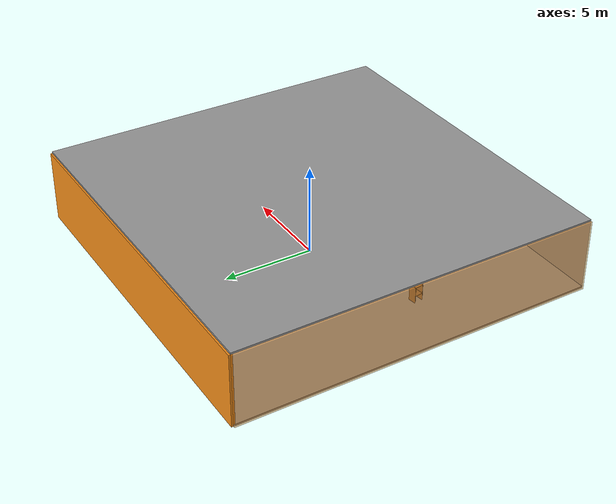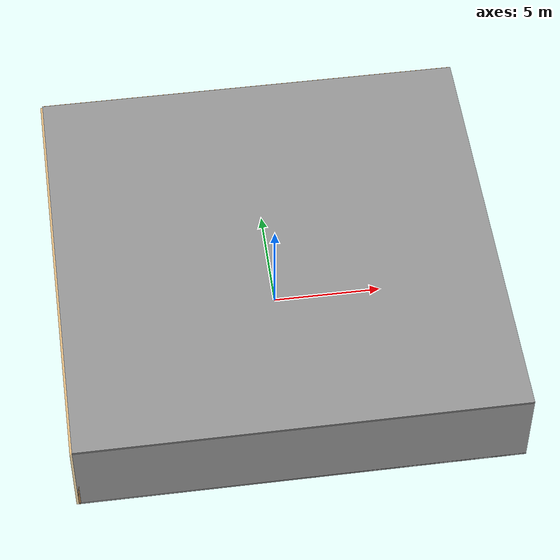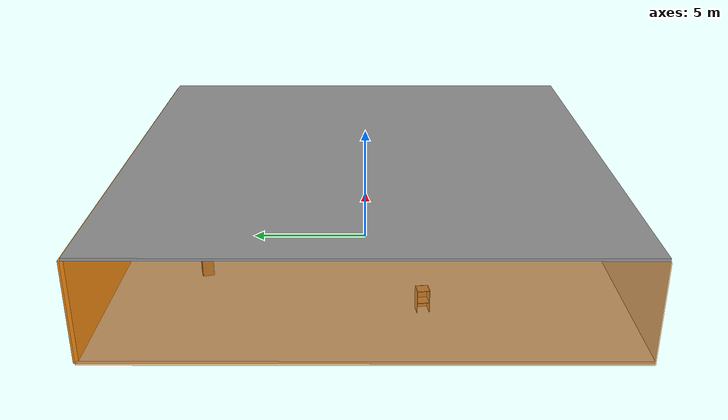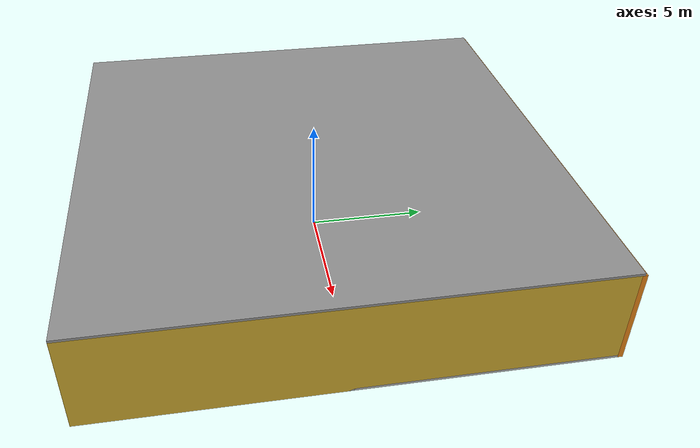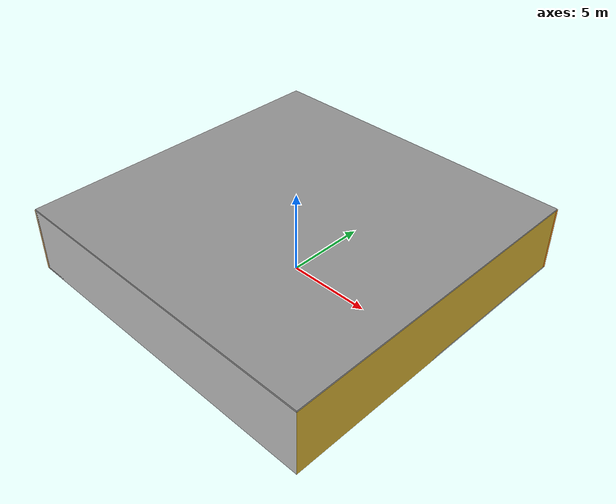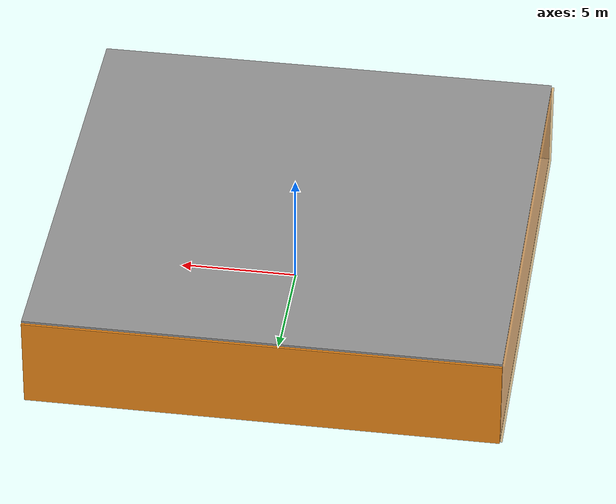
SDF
<sdf version="1.4">
 <world name="default">
  <physics type="ode">
   <max_step_size>0.001</max_step_size>
   <real_time_factor>1</real_time_factor>
   <real_time_update_rate>1000</real_time_update_rate>
   <gravity>0 0 -9.8</gravity>
  </physics>
  <scene><ambient>0.4 0.4 0.4 1</ambient><background>0.7 0.7 0.7 1</background><shadows>1</shadows></scene>
  <model name="Surrounding">
   <static>1</static>
   <link name="Ceiling">
    <collision name="Ceiling_Collision"><geometry><box><size>20 20 0.1</size></box></geometry></collision>
    <visual name="Ceiling_Visual">
     <geometry><box><size>20 20 0.1</size></box></geometry>
     <material>
      <script><uri>file://media/materials/scripts/gazebo.material</uri><name>Gazebo/Grey</name></script>
     </material>
    </visual>
    <pose>0 0 4.05 0 0 0</pose>
   </link>
   <link name="Wall_South">
    <collision name="Wall_South_Collision">
     <geometry><box><size>20 0 4</size></box></geometry>
     <pose>0 0 2 0 -0 0</pose>
    </collision>
    <visual name="Wall_South_Visual">
     <pose>0 0 2 0 -0 0</pose>
     <geometry><box><size>20 0 4</size></box></geometry>
     <material>
      <script><uri>file://media/materials/scripts/gazebo.material</uri><name>Gazebo/LightOn</name></script>
     </material>
    </visual>
    <velocity_decay><linear>0</linear><angular>0</angular></velocity_decay>
    <pose>0 -10 0 0 -0 0</pose>
   </link>
   <link name="Wall_East">
    <collision name="Wall_21_Collision">
     <geometry><box><size>20 0 4</size></box></geometry>
     <pose>0 0 2 0 -0 0</pose>
    </collision>
    <visual name="Wall_21_Visual">
     <pose>0 0 2 0 -0 0</pose>
     <geometry><box><size>20 0 4</size></box></geometry>
     <material>
      <script><uri>file://media/materials/scripts/gazebo.material</uri><name>Gazebo/Gold</name></script>
     </material>
    </visual>
    <velocity_decay><linear>0</linear><angular>0</angular></velocity_decay>
    <pose>10 0 0 0 -0 1.5708</pose>
   </link>
   <link name="Wall_North">
    <collision name="Wall_22_Collision">
     <geometry><box><size>20 0.2 4</size></box></geometry>
     <pose>0 0 2 0 -0 0</pose>
    </collision>
    <visual name="Wall_22_Visual">
     <pose>0 0 2 0 -0 0</pose>
     <geometry><box><size>20 0.2 4</size></box></geometry>
     <material>
      <script><uri>file://media/materials/scripts/gazebo.material</uri><name>Gazebo/Orange</name></script>
     </material>
    </visual>
    <velocity_decay><linear>0</linear><angular>0</angular></velocity_decay>
    <pose>0 10 0 0 -0 0</pose>
   </link>
   <link name="Wall_West">
    <collision name="Wall_23_Collision">
     <geometry><box><size>20 0.2 4</size></box></geometry>
     <pose>0 0 2 0 -0 0</pose>
    </collision>
    <visual name="Wall_23_Visual">
     <pose>0 0 2 0 -0 0</pose>
     <geometry><box><size>20 0.2 4</size></box></geometry>
     <material>
      <script>
       <uri>file://media/materials/scripts/gazebo.material</uri>
       <name>Gazebo/OrangeTransparent</name>
      </script>
     </material>
    </visual>
    <velocity_decay><linear>0</linear><angular>0</angular></velocity_decay>
    <pose>-10 0 0 0 0 -1.5708</pose>
   </link>
   <link name="Ground_link">
    <collision name="collision">
     <pose>0 0 .05 0 -0 0</pose>
     <geometry><box><size>20 20 0.1</size></box></geometry>
    </collision>
    <visual name="visual">
     <pose>0 0 .05 0 -0 0</pose>
     <geometry><box><size>20 20 0.1</size></box></geometry>
     <material>
      <script><uri>file://media/materials/scripts/gazebo.material</uri><name>Gazebo/JointAnchor</name></script>
     </material>
    </visual>
   </link>
   <static>1</static>
  </model>
  <spherical_coordinates>
   <surface_model>EARTH_WGS84</surface_model>
   <latitude_deg>0</latitude_deg>
   <longitude_deg>0</longitude_deg>
   <elevation>0</elevation>
   <heading_deg>0</heading_deg>
  </spherical_coordinates>
  <light name="lightball_0" type="diffuse">
   <diffuse>0.8 0.8 0.8 1</diffuse>
   <specular>0.2 0.2 0.2 1</specular>
   <attenuation>
    <range>100</range>
    <constant>0.7</constant>
    <linear>0.01</linear>
    <quadratic>0.001</quadratic>
   </attenuation>
   <direction>-0.5 0.1 -0.9</direction>
   <pose>-1.98284704831 -4.04191727016 1.84114158887 0 0 0</pose>
  </light>
  <light name="lightball_1" type="diffuse">
   <diffuse>0.8 0.8 0.8 1</diffuse>
   <specular>0.2 0.2 0.2 1</specular>
   <attenuation>
    <range>100</range>
    <constant>0.7</constant>
    <linear>0.01</linear>
    <quadratic>0.001</quadratic>
   </attenuation>
   <direction>-0.5 0.1 -0.9</direction>
   <pose>9.79250395435 7.86484292257 3.55461371257 0 0 0</pose>
  </light>
  <light name="lightball_2" type="diffuse">
   <diffuse>0.8 0.8 0.8 1</diffuse>
   <specular>0.2 0.2 0.2 1</specular>
   <attenuation>
    <range>100</range>
    <constant>0.7</constant>
    <linear>0.01</linear>
    <quadratic>0.001</quadratic>
   </attenuation>
   <direction>-0.5 0.1 -0.9</direction>
   <pose>5.32424938726 -0.368213467007 1.43485212472 0 0 0</pose>
  </light>
  <light name="lightball_3" type="diffuse">
   <diffuse>0.8 0.8 0.8 1</diffuse>
   <specular>0.2 0.2 0.2 1</specular>
   <attenuation>
    <range>100</range>
    <constant>0.7</constant>
    <linear>0.01</linear>
    <quadratic>0.001</quadratic>
   </attenuation>
   <direction>-0.5 0.1 -0.9</direction>
   <pose>0.803254164161 -7.47509873117 0.975967519623 0 0 0</pose>
  </light>
  <include><uri>model://cabinet</uri><pose>-6.5564336625 -2.15751080366 0 0 0 0.14377211408</pose></include>
  <include><uri>model://cabinet</uri><pose>-3.66117170835 6.46958280551 0 0 0 1.82920846033</pose></include>
  <include><uri>model://table</uri><pose>2.0075691586 2.65995450912 0 0 0 0.953653128053</pose></include>
  <include>
   <uri>model://robocup_3Dsim_goal</uri>
   <pose>4.28795644696 -5.30229044966 0 0 0 0.564708497128</pose>
  </include>
  <include>
   <uri>model://robocup_3Dsim_goal</uri>
   <pose>5.33492452693 4.58140360673 0 0 0 1.13485325562</pose>
  </include>
 </world>
</sdf>

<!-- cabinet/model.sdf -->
<sdf version="1.5">
  <model name="cabinet">
    <static>true</static>
    <link name="cabinet_bottom_plate">
      <inertial>
        <pose>0 0 -1 0 0 0</pose>
        <inertia>
          <ixx>2.050000</ixx>
          <ixy>0</ixy>
          <ixz>0</ixz>
          <iyy>2.050000</iyy>
          <iyz>0</iyz>
          <izz>2.050000</izz>
        </inertia>
        <mass>25.000000</mass>
      </inertial>
      <collision name="cabinet_bottom_plate_geom">
        <pose>0 0 0.010000 0 0 0</pose>
        <geometry>
          <box>
            <size>0.450000 0.450000 0.020000</size>
          </box>
        </geometry>
      </collision>
      <visual name="cabinet_bottom_plate_geom_visual">
        <pose>0 0 0.010000 0 0 0</pose>
        <geometry>
          <box>
            <size>0.450000 0.450000 0.020000</size>
          </box>
        </geometry>
        <material>
          <script>
            <uri>model://media/materials/scripts/gazebo.material</uri>
            <name>Gazebo/Wood</name>
          </script>
        </material>
      </visual>
      <collision name="cabinet_bottom_plate_geom_cabinet_back_plate">
        <pose>0.235000 0 0.510000 0 0 0</pose>
        <geometry>
          <box>
            <size>0.020000 0.450000 1.020000</size>
          </box>
        </geometry>
      </collision>
      <visual name="cabinet_bottom_plate_geom_cabinet_back_plate_visual">
        <pose>0.235000 0 0.510000 0 0 0</pose>
        <geometry>
          <box>
            <size>0.020000 0.450000 1.020000</size>
          </box>
        </geometry>
        <material>
          <script>
            <uri>model://media/materials/scripts/gazebo.material</uri>
            <name>Gazebo/Wood</name>
          </script>
        </material>
      </visual>
      <collision name="cabinet_bottom_plate_geom_cabinet_left_plate">
        <pose>0 0.235000 0.510000 0 0 0</pose>
        <geometry>
          <box>
            <size>0.450000 0.020000 1.020000</size>
          </box>
        </geometry>
      </collision>
      <visual name="cabinet_bottom_plate_geom_cabinet_left_plate_visual">
        <pose>0 0.235000 0.510000 0 0 0</pose>
        <geometry>
          <box>
            <size>0.450000 0.020000 1.020000</size>
          </box>
        </geometry>
        <material>
          <script>
            <uri>model://media/materials/scripts/gazebo.material</uri>
            <name>Gazebo/Wood</name>
          </script>
        </material>
      </visual>
      <collision name="cabinet_bottom_plate_geom_cabinet_middle_plate">
        <pose>0 0 0.510000 0 0 0</pose>
        <geometry>
          <box>
            <size>0.450000 0.450000 0.020000</size>
          </box>
        </geometry>
      </collision>
      <visual name="cabinet_bottom_plate_geom_cabinet_middle_plate_visual">
        <pose>0 0 0.510000 0 0 0</pose>
        <geometry>
          <box>
            <size>0.450000 0.450000 0.020000</size>
          </box>
        </geometry>
        <material>
          <script>
            <uri>model://media/materials/scripts/gazebo.material</uri>
            <name>Gazebo/Wood</name>
          </script>
        </material>
      </visual>
      <collision name="cabinet_bottom_plate_geom_cabinet_right_plate">
        <pose>0 -0.235000 0.510000 0 0 0</pose>
        <geometry>
          <box>
            <size>0.450000 0.020000 1.020000</size>
          </box>
        </geometry>
      </collision>
      <visual name="cabinet_bottom_plate_geom_cabinet_right_plate_visual">
        <pose>0 -0.235000 0.510000 0 0 0</pose>
        <geometry>
          <box>
            <size>0.450000 0.020000 1.020000</size>
          </box>
        </geometry>
        <material>
          <script>
            <uri>model://media/materials/scripts/gazebo.material</uri>
            <name>Gazebo/Wood</name>
          </script>
        </material>
      </visual>
      <collision name="cabinet_bottom_plate_geom_cabinet_top_plate">
        <pose>0 0 1.010000 0 0 0</pose>
        <geometry>
          <box>
            <size>0.450000 0.450000 0.020000</size>
          </box>
        </geometry>
      </collision>
      <visual name="cabinet_bottom_plate_geom_cabinet_top_plate_visual">
        <pose>0 0 1.010000 0 0 0</pose>
        <geometry>
          <box>
            <size>0.450000 0.450000 0.020000</size>
          </box>
        </geometry>
        <material>
          <script>
            <uri>model://media/materials/scripts/gazebo.material</uri>
            <name>Gazebo/Wood</name>
          </script>
        </material>
      </visual>
    </link>
  </model>
</sdf>

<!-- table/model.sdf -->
<sdf version="1.5">
  <model name="table">
    <static>true</static>
    <link name="link">
      <collision name="surface">
        <pose>0 0 1.0 0 0 0</pose>
        <geometry>
          <box>
            <size>1.5 0.8 0.03</size>
          </box>
        </geometry>
        <surface>
          <friction>
            <ode>
              <mu>0.6</mu>
              <mu2>0.6</mu2>
            </ode>
          </friction>
        </surface>
      </collision>
      <visual name="visual1">
        <pose>0 0 1.0 0 0 0</pose>
        <geometry>
          <box>
            <size>1.5 0.8 0.03</size>
          </box>
        </geometry>
        <material>
          <script>
            <uri>model://media/materials/scripts/gazebo.material</uri>
            <name>Gazebo/Wood</name>
          </script>
        </material>
      </visual>
      <collision name="front_left_leg">
        <pose>0.68 0.38 0.5 0 0 0</pose>
        <geometry>
          <cylinder>
            <radius>0.02</radius>
            <length>1.0</length>
          </cylinder>
        </geometry>
      </collision>
      <visual name="front_left_leg">
        <pose>0.68 0.38 0.5 0 0 0</pose>
        <geometry>
          <cylinder>
            <radius>0.02</radius>
            <length>1.0</length>
          </cylinder>
        </geometry>
        <material>
          <script>
            <uri>model://media/materials/scripts/gazebo.material</uri>
            <name>Gazebo/Grey</name>
          </script>
        </material>
      </visual>
      <collision name="front_right_leg">
        <pose>0.68 -0.38 0.5 0 0 0</pose>
        <geometry>
          <cylinder>
            <radius>0.02</radius>
            <length>1.0</length>
          </cylinder>
        </geometry>
      </collision>
      <visual name="front_right_leg">
        <pose>0.68 -0.38 0.5 0 0 0</pose>
        <geometry>
          <cylinder>
            <radius>0.02</radius>
            <length>1.0</length>
          </cylinder>
        </geometry>
        <material>
          <script>
            <uri>model://media/materials/scripts/gazebo.material</uri>
            <name>Gazebo/Grey</name>
          </script>
        </material>
      </visual>
      <collision name="back_right_leg">
        <pose>-0.68 -0.38 0.5 0 0 0</pose>
        <geometry>
          <cylinder>
            <radius>0.02</radius>
            <length>1.0</length>
          </cylinder>
        </geometry>
      </collision>
      <visual name="back_right_leg">
        <pose>-0.68 -0.38 0.5 0 0 0</pose>
        <geometry>
          <cylinder>
            <radius>0.02</radius>
            <length>1.0</length>
          </cylinder>
        </geometry>
        <material>
          <script>
            <uri>model://media/materials/scripts/gazebo.material</uri>
            <name>Gazebo/Grey</name>
          </script>
        </material>
      </visual>
      <collision name="back_left_leg">
        <pose>-0.68 0.38 0.5 0 0 0</pose>
        <geometry>
          <cylinder>
            <radius>0.02</radius>
            <length>1.0</length>
          </cylinder>
        </geometry>
      </collision>
      <visual name="back_left_leg">
        <pose>-0.68 0.38 0.5 0 0 0</pose>
        <geometry>
          <cylinder>
            <radius>0.02</radius>
            <length>1.0</length>
          </cylinder>
        </geometry>
        <material>
          <script>
            <uri>model://media/materials/scripts/gazebo.material</uri>
            <name>Gazebo/Grey</name>
          </script>
        </material>
      </visual>
    </link>
  </model>
</sdf>

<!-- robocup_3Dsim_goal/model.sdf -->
<sdf version="1.5">
  <model name="robocup_3d_goal">
    <static>true</static>
    <link name="left_post">
      <pose>0 1.05 0.45 0 0 0</pose>
      <collision name="collision">
        <geometry>
          <cylinder>
            <radius>0.05</radius>
            <length>0.9</length>
          </cylinder>
        </geometry>
      </collision>
      <visual name="visual">
        <geometry>
          <cylinder>
            <radius>0.05</radius>
            <length>0.9</length>
          </cylinder>
        </geometry>
        <material>
          <script>
            <uri>file://media/materials/scripts/gazebo.material</uri>
            <name>Gazebo/ZincYellow</name>
          </script>
        </material>
      </visual>
    </link>
    <link name="left_support_horiz_lower">
      <pose>0.30 1.05 0.01 0 0 0</pose>
      <collision name="collision">
        <geometry>
          <box>
            <size>0.50 0.02 0.02</size>
          </box>
        </geometry>
      </collision>
      <visual name="visual">
        <geometry>
          <box>
            <size>0.50 0.02 0.02</size>
          </box>
        </geometry>
        <material>
          <script>
            <uri>file://media/materials/scripts/gazebo.material</uri>
            <name>Gazebo/White</name>
          </script>
        </material>
      </visual>
    </link>
    <link name="left_support_horiz_upper">
      <pose>0.30 1.05 0.79 0 0 0</pose>
      <collision name="collision">
        <geometry>
          <box>
            <size>0.50 0.02 0.02</size>
          </box>
        </geometry>
      </collision>
      <visual name="visual">
        <geometry>
          <box>
            <size>0.50 0.02 0.02</size>
          </box>
        </geometry>
        <material>
          <script>
            <uri>file://media/materials/scripts/gazebo.material</uri>
            <name>Gazebo/White</name>
          </script>
        </material>
      </visual>
    </link>
    <link name="left_support_vertical">
      <pose>0.56 1.05 0.4 0 1.5708 0</pose>
      <collision name="collision">
        <geometry>
          <box>
            <size>0.80 0.02 0.02</size>
          </box>
        </geometry>
      </collision>
      <visual name="visual">
        <geometry>
          <box>
            <size>0.80 0.02 0.02</size>
          </box>
        </geometry>
        <material>
          <script>
            <uri>file://media/materials/scripts/gazebo.material</uri>
            <name>Gazebo/White</name>
          </script>
        </material>
      </visual>
    </link>
    <link name="right_support_horiz_lower">
      <pose>0.30 -1.05 0.01 0 0 0</pose>
      <collision name="collision">
        <geometry>
          <box>
            <size>0.50 0.02 0.02</size>
          </box>
        </geometry>
      </collision>
      <visual name="visual">
        <geometry>
          <box>
            <size>0.50 0.02 0.02</size>
          </box>
        </geometry>
        <material>
          <script>
            <uri>file://media/materials/scripts/gazebo.material</uri>
            <name>Gazebo/White</name>
          </script>
        </material>
      </visual>
    </link>
    <link name="right_support_horiz_upper">
      <pose>0.30 -1.05 0.79 0 0 0</pose>
      <collision name="collision">
        <geometry>
          <box>
            <size>0.50 0.02 0.02</size>
          </box>
        </geometry>
      </collision>
      <visual name="visual">
        <geometry>
          <box>
            <size>0.50 0.02 0.02</size>
          </box>
        </geometry>
        <material>
          <script>
            <uri>file://media/materials/scripts/gazebo.material</uri>
            <name>Gazebo/White</name>
          </script>
        </material>
      </visual>
    </link>
    <link name="right_support_vertical">
      <pose>0.56 -1.05 0.4 0 1.5708 0</pose>
      <collision name="collision">
        <geometry>
          <box>
            <size>0.80 0.02 0.02</size>
          </box>
        </geometry>
      </collision>
      <visual name="visual">
        <geometry>
          <box>
            <size>0.80 0.02 0.02</size>
          </box>
        </geometry>
        <material>
          <script>
            <uri>file://media/materials/scripts/gazebo.material</uri>
            <name>Gazebo/White</name>
          </script>
        </material>
      </visual>
    </link>
    <link name="center_support_horiz_lower">
      <pose>0.56 0 0.01 0 1.5708 0</pose>
      <collision name="collision">
        <geometry>
          <box>
            <size>0.02 2.08 0.02</size>
          </box>
        </geometry>
      </collision>
      <visual name="visual">
        <geometry>
          <box>
            <size>0.02 2.08 0.02</size>
          </box>
        </geometry>
        <material>
          <script>
            <uri>file://media/materials/scripts/gazebo.material</uri>
            <name>Gazebo/White</name>
          </script>
        </material>
      </visual>
    </link>
    <link name="center_support_horiz_upper">
      <pose>0.56 0 0.79 0 1.5708 0</pose>
      <collision name="collision">
        <geometry>
          <box>
            <size>0.02 2.08 0.02</size>
          </box>
        </geometry>
      </collision>
      <visual name="visual">
        <geometry>
          <box>
            <size>0.02 2.08 0.02</size>
          </box>
        </geometry>
        <material>
          <script>
            <uri>file://media/materials/scripts/gazebo.material</uri>
            <name>Gazebo/White</name>
          </script>
        </material>
      </visual>
    </link>
    <link name="right_post">
      <pose>0 -1.05 0.45 0 0 0</pose>
      <collision name="collision">
        <geometry>
          <cylinder>
            <radius>0.05</radius>
            <length>0.9</length>
          </cylinder>
        </geometry>
      </collision>
      <visual name="visual">
        <geometry>
          <cylinder>
            <radius>0.05</radius>
            <length>0.9</length>
          </cylinder>
        </geometry>
        <material>
          <script>
            <uri>file://media/materials/scripts/gazebo.material</uri>
            <name>Gazebo/ZincYellow</name>
          </script>
        </material>
      </visual>
    </link>
    <link name="crossbar">
      <pose>0 0 0.85 1.57 1.57 0</pose>
      <collision name="collision">
        <geometry>
          <cylinder>
            <radius>0.05</radius>
            <length>2.0</length>
          </cylinder>
        </geometry>
      </collision>
      <visual name="visual">
        <geometry>
          <cylinder>
            <radius>0.05</radius>
            <length>2.0</length>
          </cylinder>
        </geometry>
        <material>
          <script>
            <uri>file://media/materials/scripts/gazebo.material</uri>
            <name>Gazebo/ZincYellow</name>
          </script>
        </material>
      </visual>
    </link>
    <link name="center_net">
      <pose>0.56 0 0.40 0 0 0</pose>
      <collision name="collision">
        <geometry>
          <box>
            <size>0.01 2.1 0.80</size>
          </box>
        </geometry>
      </collision>
      <visual name="visual">
        <geometry>
          <box>
            <size>0.01 2.1 0.80</size>
          </box>
        </geometry>
        <material>
          <script>
            <uri>model://../model_source/models/robocup09_spl_field/materials/scripts/</uri>
            <uri>model://../model_source/models/robocup09_spl_field/materials/textures/</uri>
            <name>RoboCup/Net</name>
          </script>
        </material>
      </visual>
    </link>
    <link name="left_net">
      <pose>0.30 1.05 0.40 0 0 0</pose>
      <collision name="collision">
        <geometry>
          <box>
            <size>0.50 0.01 0.76</size>
          </box>
        </geometry>
      </collision>
      <visual name="visual">
        <geometry>
          <box>
            <size>0.50 0.01 0.76</size>
          </box>
        </geometry>
        <material>
          <script>
            <uri>model://../model_source/models/robocup09_spl_field/materials/scripts/</uri>
            <uri>model://../model_source/models/robocup09_spl_field/materials/textures/</uri>
            <name>RoboCup/Net</name>
          </script>
        </material>
      </visual>
    </link>
    <link name="right_net">
      <pose>0.30 -1.05 0.40 0 0 0</pose>
      <collision name="collision">
        <geometry>
          <box>
            <size>0.50 0.01 0.76</size>
          </box>
        </geometry>
      </collision>
      <visual name="visual">
        <geometry>
          <box>
            <size>0.50 0.01 0.76</size>
          </box>
        </geometry>
        <material>
          <script>
            <uri>model://../model_source/models/robocup09_spl_field/materials/scripts/</uri>
            <uri>model://../model_source/models/robocup09_spl_field/materials/textures/</uri>
            <name>RoboCup/Net</name>
          </script>
        </material>
      </visual>
    </link>
  </model>
</sdf>
